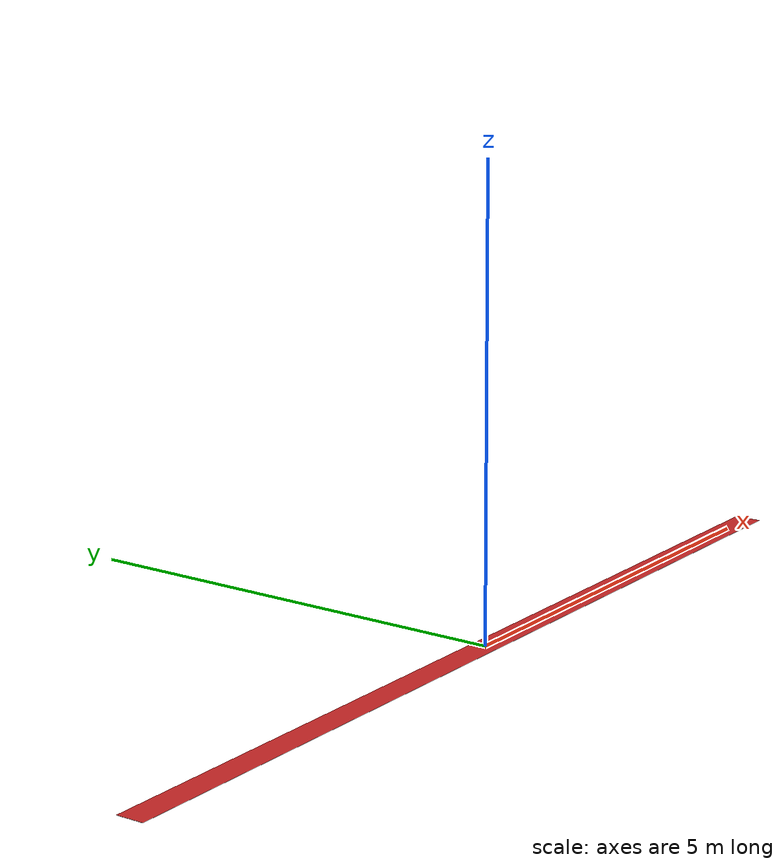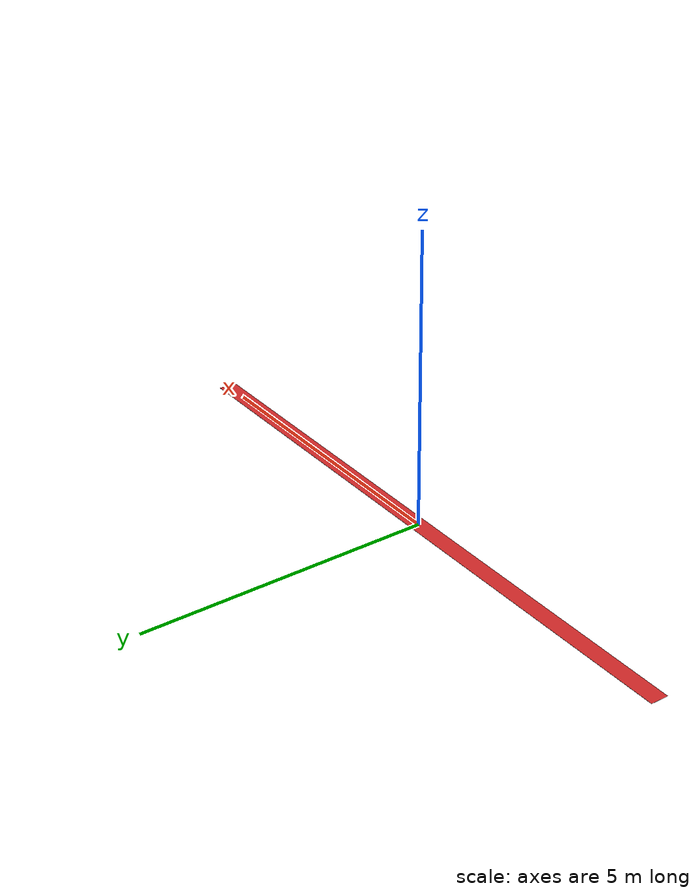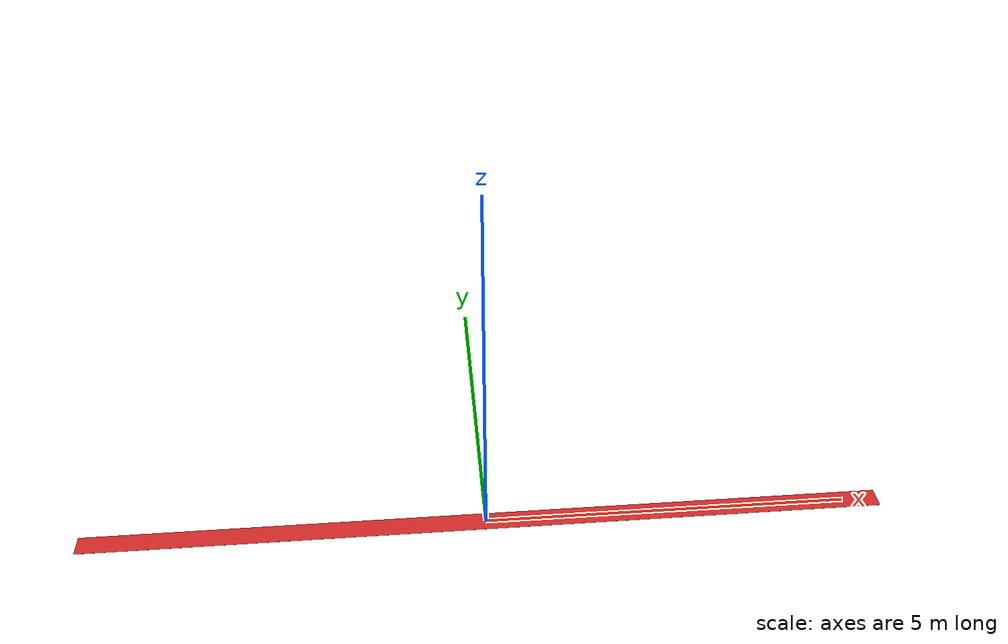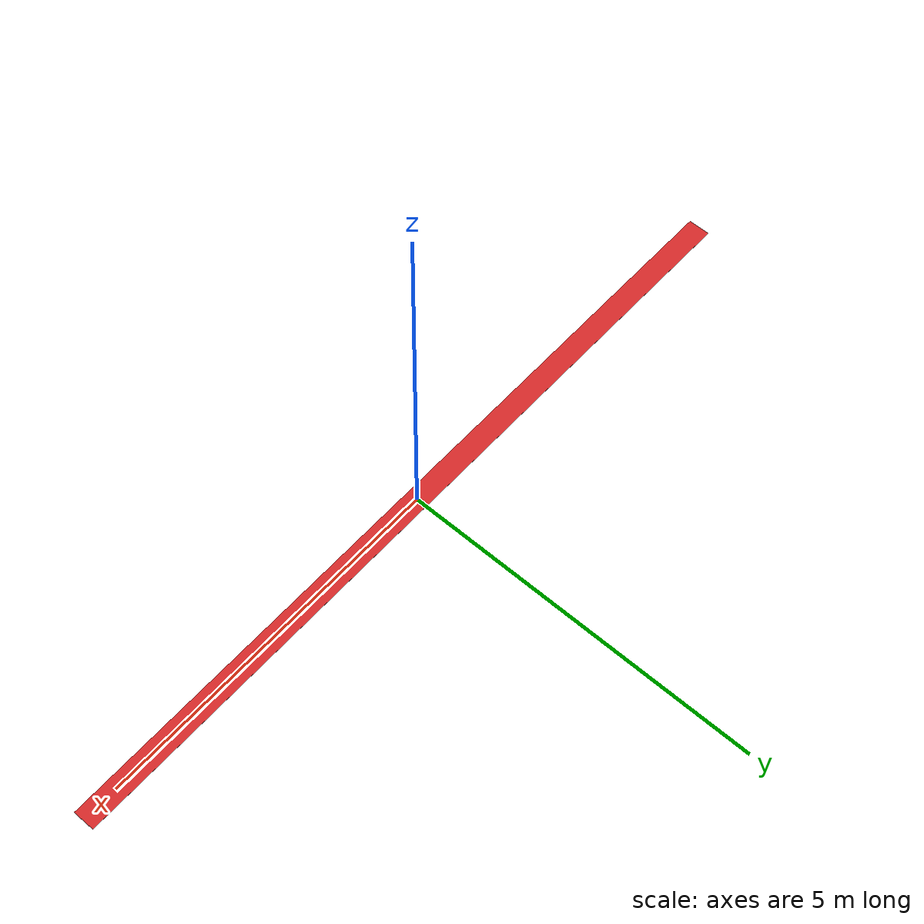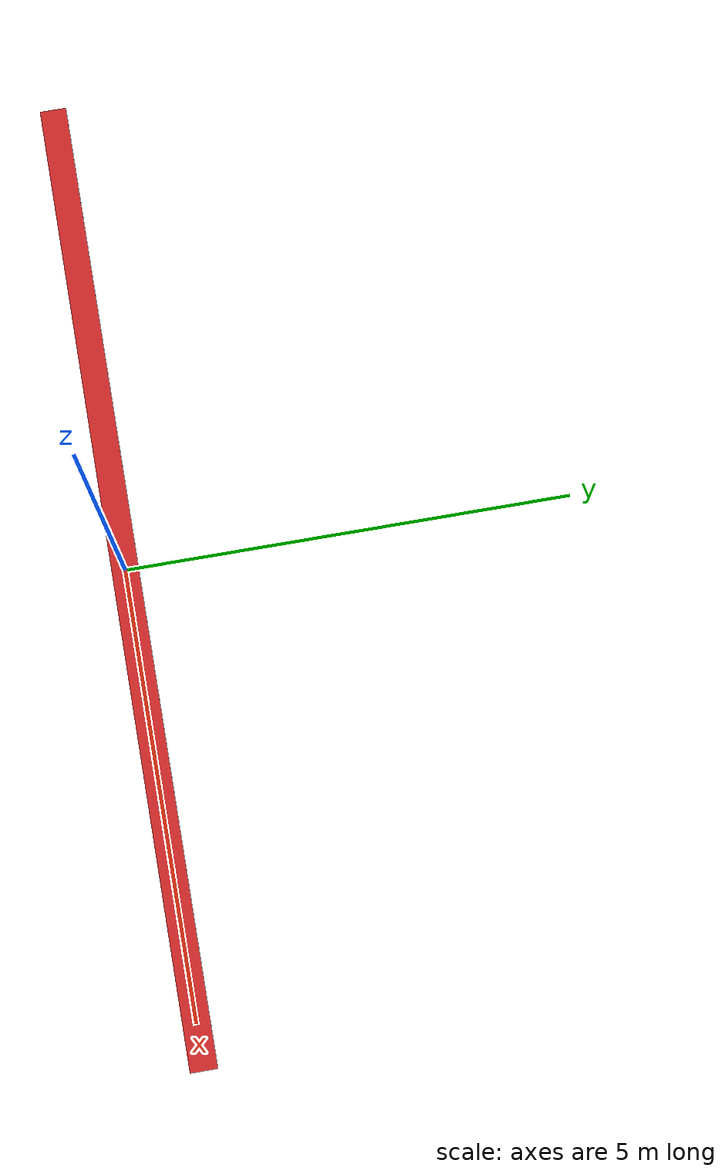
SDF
<?xml version='1.0'?>
<sdf version='1.6'>
  <model name='short_red_stripe'>
    <static>true</static>
    <link name='link_0'>
      <pose frame=''>0 0 0 0 -0 0</pose>
      <inertial>
        <mass>1</mass>
        <inertia>
          <ixx>0.166667</ixx>
          <ixy>0</ixy>
          <ixz>0</ixz>
          <iyy>0.166667</iyy>
          <iyz>0</iyz>
          <izz>0.166667</izz>
        </inertia>
        <pose frame=''>0 0 0 0 -0 0</pose>
      </inertial>
      <gravity>1</gravity>
      <self_collide>0</self_collide>
      <kinematic>0</kinematic>
      <visual name='visual'>
        <pose frame=''>0 0 0 0 -0 0</pose>
        <geometry>
          <box>
            <size>11 0.3 0.002</size>
          </box>
        </geometry>
        <material>
          <lighting>1</lighting>
          <script>
            <uri>file://media/materials/scripts/gazebo.material</uri>
            <name>Gazebo/Red</name>
          </script>
          <shader type='vertex'>
            <normal_map>__default__</normal_map>
          </shader>
        </material>
        <cast_shadows>0</cast_shadows>
        <transparency>0</transparency>
      </visual>
    </link>
    <static>0</static>
    <allow_auto_disable>1</allow_auto_disable>
  </model>
</sdf>
